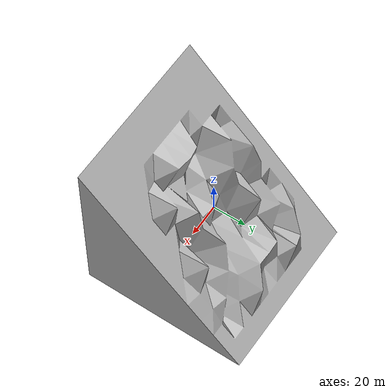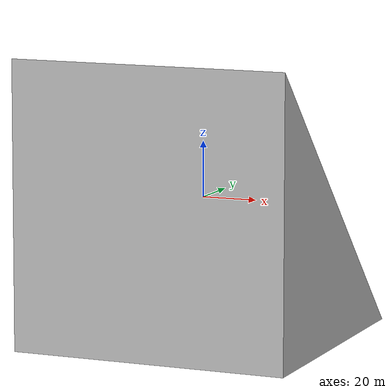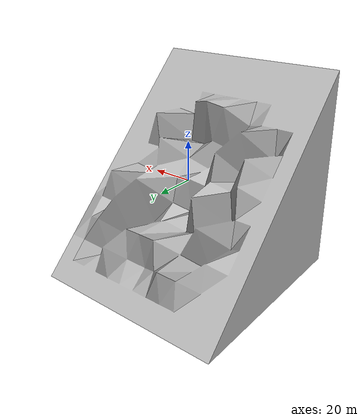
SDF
<sdf version="1.5">
  <model name="wedge">
    <link name="wedge">
      <static>false</static>
      <collision name="wedge">
        <pose>0 0 0 0 0 0</pose>
        <geometry>
          <mesh>
            <uri>model://wedge/meshes/45_noisy.stl</uri>
            <scale>50 50 50</scale>
          </mesh>
        </geometry>

      </collision>

      <visual name="wede">
        <pose>0 0 0 0 0 0</pose>
        <cast_shadows>false</cast_shadows>
        <geometry>
          <mesh>ble
            <uri>model://wedge/meshes/45_noisy.stl</uri>
            <scale>50 50 50</scale>
          </mesh>
        </geometry>

      </visual>

       <kinematic>1</kinematic>
     </link>
  </model>
</sdf>
